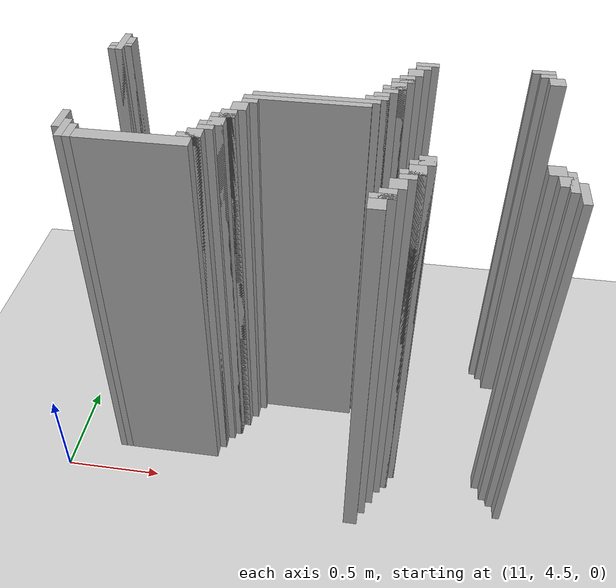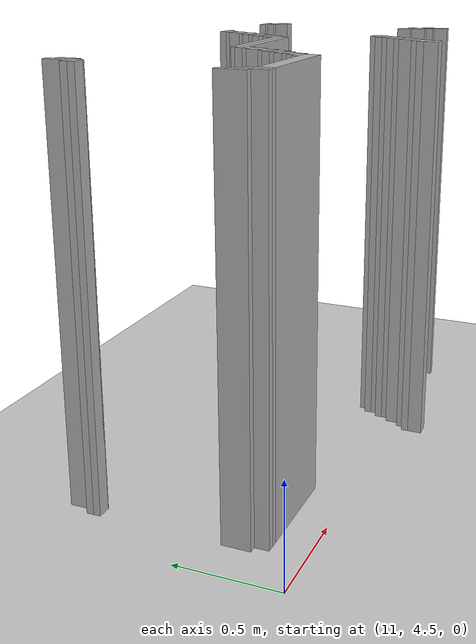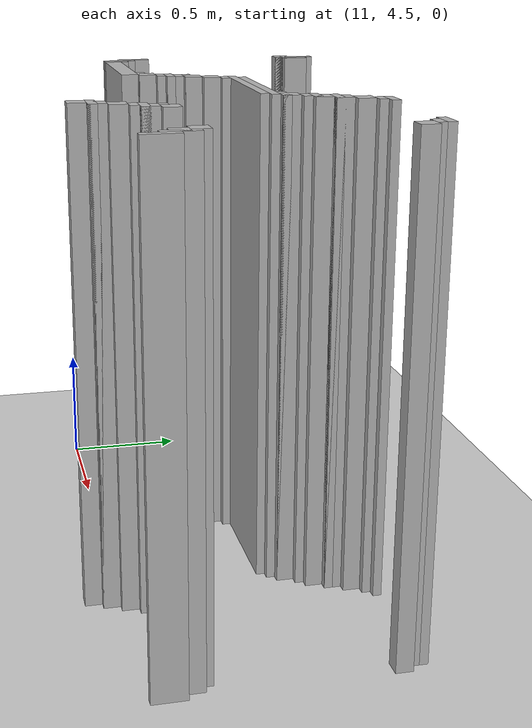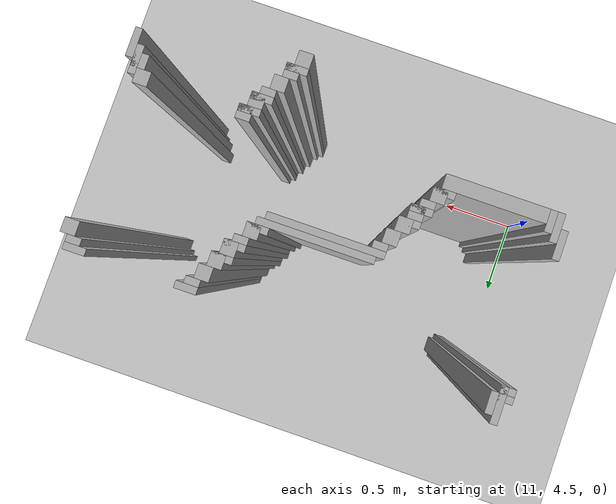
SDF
<sdf version="1.6">
 <world name="slam_world">
  <model name="ground_plane">
   <static>true</static>
   <link name="link">
    <collision name="collision">
     <geometry><plane><normal>0 0 1</normal><size>100 100</size></plane></geometry>
    </collision>
    <visual name="visual">
     <geometry><plane><normal>0 0 1</normal><size>100 100</size></plane></geometry>
     <material>
      <ambient>0.8 0.8 0.8 1</ambient>
      <diffuse>0.8 0.8 0.8 1</diffuse>
      <specular>0.8 0.8 0.8 1</specular>
     </material>
    </visual>
   </link>
  </model>
  <model name="wall_3935">
   <static>true</static>
   <pose>11.258700696055683 5.551044083526682 1.0 0 0 0</pose>
   <link name="link">
    <collision name="collision">
     <geometry><box><size>0.03480278422273782 0.17401392111368907 2.0</size></box></geometry>
    </collision>
    <visual name="visual">
     <geometry><box><size>0.03480278422273782 0.17401392111368907 2.0</size></box></geometry>
     <material><ambient>0.5 0.5 0.5 1</ambient><diffuse>0.7 0.7 0.7 1</diffuse></material>
    </visual>
   </link>
  </model>
  <model name="wall_3950">
   <static>true</static>
   <pose>11.293503480278423 5.551044083526682 1.0 0 0 0</pose>
   <link name="link">
    <collision name="collision">
     <geometry><box><size>0.03480278422273782 0.10440835266821345 2.0</size></box></geometry>
    </collision>
    <visual name="visual">
     <geometry><box><size>0.03480278422273782 0.10440835266821345 2.0</size></box></geometry>
     <material><ambient>0.5 0.5 0.5 1</ambient><diffuse>0.7 0.7 0.7 1</diffuse></material>
    </visual>
   </link>
  </model>
  <model name="wall_3980">
   <static>true</static>
   <pose>11.258700696055683 5.516241299303944 1.0 0 0 0</pose>
   <link name="link">
    <collision name="collision">
     <geometry><box><size>0.10440835266821345 0.03480278422273782 2.0</size></box></geometry>
    </collision>
    <visual name="visual">
     <geometry><box><size>0.10440835266821345 0.03480278422273782 2.0</size></box></geometry>
     <material><ambient>0.5 0.5 0.5 1</ambient><diffuse>0.7 0.7 0.7 1</diffuse></material>
    </visual>
   </link>
  </model>
  <model name="wall_3981">
   <static>true</static>
   <pose>12.720417633410673 5.516241299303944 1.0 0 0 0</pose>
   <link name="link">
    <collision name="collision">
     <geometry><box><size>0.10440835266821345 0.03480278422273782 2.0</size></box></geometry>
    </collision>
    <visual name="visual">
     <geometry><box><size>0.10440835266821345 0.03480278422273782 2.0</size></box></geometry>
     <material><ambient>0.5 0.5 0.5 1</ambient><diffuse>0.7 0.7 0.7 1</diffuse></material>
    </visual>
   </link>
  </model>
  <model name="wall_3982">
   <static>true</static>
   <pose>13.24245939675174 5.516241299303944 1.0 0 0 0</pose>
   <link name="link">
    <collision name="collision">
     <geometry><box><size>0.10440835266821345 0.03480278422273782 2.0</size></box></geometry>
    </collision>
    <visual name="visual">
     <geometry><box><size>0.10440835266821345 0.03480278422273782 2.0</size></box></geometry>
     <material><ambient>0.5 0.5 0.5 1</ambient><diffuse>0.7 0.7 0.7 1</diffuse></material>
    </visual>
   </link>
  </model>
  <model name="wall_3993">
   <static>true</static>
   <pose>11.241299303944315 5.481438515081206 1.0 0 0 0</pose>
   <link name="link">
    <collision name="collision">
     <geometry><box><size>0.06960556844547564 0.03480278422273782 2.0</size></box></geometry>
    </collision>
    <visual name="visual">
     <geometry><box><size>0.06960556844547564 0.03480278422273782 2.0</size></box></geometry>
     <material><ambient>0.5 0.5 0.5 1</ambient><diffuse>0.7 0.7 0.7 1</diffuse></material>
    </visual>
   </link>
  </model>
  <model name="wall_3994">
   <static>true</static>
   <pose>12.703016241299304 5.481438515081206 1.0 0 0 0</pose>
   <link name="link">
    <collision name="collision">
     <geometry><box><size>0.06960556844547564 0.03480278422273782 2.0</size></box></geometry>
    </collision>
    <visual name="visual">
     <geometry><box><size>0.06960556844547564 0.03480278422273782 2.0</size></box></geometry>
     <material><ambient>0.5 0.5 0.5 1</ambient><diffuse>0.7 0.7 0.7 1</diffuse></material>
    </visual>
   </link>
  </model>
  <model name="wall_3995">
   <static>true</static>
   <pose>13.259860788863108 5.481438515081206 1.0 0 0 0</pose>
   <link name="link">
    <collision name="collision">
     <geometry><box><size>0.06960556844547564 0.03480278422273782 2.0</size></box></geometry>
    </collision>
    <visual name="visual">
     <geometry><box><size>0.06960556844547564 0.03480278422273782 2.0</size></box></geometry>
     <material><ambient>0.5 0.5 0.5 1</ambient><diffuse>0.7 0.7 0.7 1</diffuse></material>
    </visual>
   </link>
  </model>
  <model name="wall_4007">
   <static>true</static>
   <pose>12.668213457076565 5.4292343387471 1.0 0 0 0</pose>
   <link name="link">
    <collision name="collision">
     <geometry><box><size>0.06960556844547564 0.06960556844547564 2.0</size></box></geometry>
    </collision>
    <visual name="visual">
     <geometry><box><size>0.06960556844547564 0.06960556844547564 2.0</size></box></geometry>
     <material><ambient>0.5 0.5 0.5 1</ambient><diffuse>0.7 0.7 0.7 1</diffuse></material>
    </visual>
   </link>
  </model>
  <model name="wall_4008">
   <static>true</static>
   <pose>13.294663573085847 5.4292343387471 1.0 0 0 0</pose>
   <link name="link">
    <collision name="collision">
     <geometry><box><size>0.06960556844547564 0.06960556844547564 2.0</size></box></geometry>
    </collision>
    <visual name="visual">
     <geometry><box><size>0.06960556844547564 0.06960556844547564 2.0</size></box></geometry>
     <material><ambient>0.5 0.5 0.5 1</ambient><diffuse>0.7 0.7 0.7 1</diffuse></material>
    </visual>
   </link>
  </model>
  <model name="wall_4020">
   <static>true</static>
   <pose>12.633410672853827 5.359628770301624 1.0 0 0 0</pose>
   <link name="link">
    <collision name="collision">
     <geometry><box><size>0.06960556844547564 0.06960556844547564 2.0</size></box></geometry>
    </collision>
    <visual name="visual">
     <geometry><box><size>0.06960556844547564 0.06960556844547564 2.0</size></box></geometry>
     <material><ambient>0.5 0.5 0.5 1</ambient><diffuse>0.7 0.7 0.7 1</diffuse></material>
    </visual>
   </link>
  </model>
  <model name="wall_4033">
   <static>true</static>
   <pose>12.616009280742459 5.342227378190255 1.0 0 0 0</pose>
   <link name="link">
    <collision name="collision">
     <geometry><box><size>0.10440835266821345 0.03480278422273782 2.0</size></box></geometry>
    </collision>
    <visual name="visual">
     <geometry><box><size>0.10440835266821345 0.03480278422273782 2.0</size></box></geometry>
     <material><ambient>0.5 0.5 0.5 1</ambient><diffuse>0.7 0.7 0.7 1</diffuse></material>
    </visual>
   </link>
  </model>
  <model name="wall_4041">
   <static>true</static>
   <pose>12.59860788863109 5.290023201856148 1.0 0 0 0</pose>
   <link name="link">
    <collision name="collision">
     <geometry><box><size>0.06960556844547564 0.06960556844547564 2.0</size></box></geometry>
    </collision>
    <visual name="visual">
     <geometry><box><size>0.06960556844547564 0.06960556844547564 2.0</size></box></geometry>
     <material><ambient>0.5 0.5 0.5 1</ambient><diffuse>0.7 0.7 0.7 1</diffuse></material>
    </visual>
   </link>
  </model>
  <model name="wall_4053">
   <static>true</static>
   <pose>12.581206496519721 5.27262180974478 1.0 0 0 0</pose>
   <link name="link">
    <collision name="collision">
     <geometry><box><size>0.10440835266821345 0.03480278422273782 2.0</size></box></geometry>
    </collision>
    <visual name="visual">
     <geometry><box><size>0.10440835266821345 0.03480278422273782 2.0</size></box></geometry>
     <material><ambient>0.5 0.5 0.5 1</ambient><diffuse>0.7 0.7 0.7 1</diffuse></material>
    </visual>
   </link>
  </model>
  <model name="wall_4061">
   <static>true</static>
   <pose>12.563805104408353 5.237819025522041 1.0 0 0 0</pose>
   <link name="link">
    <collision name="collision">
     <geometry><box><size>0.06960556844547564 0.03480278422273782 2.0</size></box></geometry>
    </collision>
    <visual name="visual">
     <geometry><box><size>0.06960556844547564 0.03480278422273782 2.0</size></box></geometry>
     <material><ambient>0.5 0.5 0.5 1</ambient><diffuse>0.7 0.7 0.7 1</diffuse></material>
    </visual>
   </link>
  </model>
  <model name="wall_4072">
   <static>true</static>
   <pose>12.529002320185615 5.185614849187935 1.0 0 0 0</pose>
   <link name="link">
    <collision name="collision">
     <geometry><box><size>0.06960556844547564 0.06960556844547564 2.0</size></box></geometry>
    </collision>
    <visual name="visual">
     <geometry><box><size>0.06960556844547564 0.06960556844547564 2.0</size></box></geometry>
     <material><ambient>0.5 0.5 0.5 1</ambient><diffuse>0.7 0.7 0.7 1</diffuse></material>
    </visual>
   </link>
  </model>
  <model name="wall_4085">
   <static>true</static>
   <pose>12.511600928074245 5.168213457076566 1.0 0 0 0</pose>
   <link name="link">
    <collision name="collision">
     <geometry><box><size>0.10440835266821345 0.03480278422273782 2.0</size></box></geometry>
    </collision>
    <visual name="visual">
     <geometry><box><size>0.10440835266821345 0.03480278422273782 2.0</size></box></geometry>
     <material><ambient>0.5 0.5 0.5 1</ambient><diffuse>0.7 0.7 0.7 1</diffuse></material>
    </visual>
   </link>
  </model>
  <model name="wall_4096">
   <static>true</static>
   <pose>12.250580046403712 5.133410672853828 1.0 0 0 0</pose>
   <link name="link">
    <collision name="collision">
     <geometry><box><size>0.5568445475638051 0.03480278422273782 2.0</size></box></geometry>
    </collision>
    <visual name="visual">
     <geometry><box><size>0.5568445475638051 0.03480278422273782 2.0</size></box></geometry>
     <material><ambient>0.5 0.5 0.5 1</ambient><diffuse>0.7 0.7 0.7 1</diffuse></material>
    </visual>
   </link>
  </model>
  <model name="wall_4108">
   <static>true</static>
   <pose>12.215777262180975 5.09860788863109 1.0 0 0 0</pose>
   <link name="link">
    <collision name="collision">
     <geometry><box><size>0.5568445475638051 0.03480278422273782 2.0</size></box></geometry>
    </collision>
    <visual name="visual">
     <geometry><box><size>0.5568445475638051 0.03480278422273782 2.0</size></box></geometry>
     <material><ambient>0.5 0.5 0.5 1</ambient><diffuse>0.7 0.7 0.7 1</diffuse></material>
    </visual>
   </link>
  </model>
  <model name="wall_4123">
   <static>true</static>
   <pose>11.97215777262181 5.0638051044083525 1.0 0 0 0</pose>
   <link name="link">
    <collision name="collision">
     <geometry><box><size>0.06960556844547564 0.03480278422273782 2.0</size></box></geometry>
    </collision>
    <visual name="visual">
     <geometry><box><size>0.06960556844547564 0.03480278422273782 2.0</size></box></geometry>
     <material><ambient>0.5 0.5 0.5 1</ambient><diffuse>0.7 0.7 0.7 1</diffuse></material>
    </visual>
   </link>
  </model>
  <model name="wall_4138">
   <static>true</static>
   <pose>11.937354988399072 5.0116009280742455 1.0 0 0 0</pose>
   <link name="link">
    <collision name="collision">
     <geometry><box><size>0.06960556844547564 0.06960556844547564 2.0</size></box></geometry>
    </collision>
    <visual name="visual">
     <geometry><box><size>0.06960556844547564 0.06960556844547564 2.0</size></box></geometry>
     <material><ambient>0.5 0.5 0.5 1</ambient><diffuse>0.7 0.7 0.7 1</diffuse></material>
    </visual>
   </link>
  </model>
  <model name="wall_4153">
   <static>true</static>
   <pose>11.902552204176333 4.94199535962877 1.0 0 0 0</pose>
   <link name="link">
    <collision name="collision">
     <geometry><box><size>0.06960556844547564 0.06960556844547564 2.0</size></box></geometry>
    </collision>
    <visual name="visual">
     <geometry><box><size>0.06960556844547564 0.06960556844547564 2.0</size></box></geometry>
     <material><ambient>0.5 0.5 0.5 1</ambient><diffuse>0.7 0.7 0.7 1</diffuse></material>
    </visual>
   </link>
  </model>
  <model name="wall_4168">
   <static>true</static>
   <pose>11.885150812064964 4.924593967517401 1.0 0 0 0</pose>
   <link name="link">
    <collision name="collision">
     <geometry><box><size>0.10440835266821345 0.03480278422273782 2.0</size></box></geometry>
    </collision>
    <visual name="visual">
     <geometry><box><size>0.10440835266821345 0.03480278422273782 2.0</size></box></geometry>
     <material><ambient>0.5 0.5 0.5 1</ambient><diffuse>0.7 0.7 0.7 1</diffuse></material>
    </visual>
   </link>
  </model>
  <model name="wall_4179">
   <static>true</static>
   <pose>11.867749419953595 4.872389791183294 1.0 0 0 0</pose>
   <link name="link">
    <collision name="collision">
     <geometry><box><size>0.06960556844547564 0.06960556844547564 2.0</size></box></geometry>
    </collision>
    <visual name="visual">
     <geometry><box><size>0.06960556844547564 0.06960556844547564 2.0</size></box></geometry>
     <material><ambient>0.5 0.5 0.5 1</ambient><diffuse>0.7 0.7 0.7 1</diffuse></material>
    </visual>
   </link>
  </model>
  <model name="wall_4192">
   <static>true</static>
   <pose>11.223897911832946 4.802784222737819 1.0 0 0 0</pose>
   <link name="link">
    <collision name="collision">
     <geometry><box><size>0.03480278422273782 0.13921113689095127 2.0</size></box></geometry>
    </collision>
    <visual name="visual">
     <geometry><box><size>0.03480278422273782 0.13921113689095127 2.0</size></box></geometry>
     <material><ambient>0.5 0.5 0.5 1</ambient><diffuse>0.7 0.7 0.7 1</diffuse></material>
    </visual>
   </link>
  </model>
  <model name="wall_4193">
   <static>true</static>
   <pose>11.850348027842227 4.854988399071925 1.0 0 0 0</pose>
   <link name="link">
    <collision name="collision">
     <geometry><box><size>0.10440835266821345 0.03480278422273782 2.0</size></box></geometry>
    </collision>
    <visual name="visual">
     <geometry><box><size>0.10440835266821345 0.03480278422273782 2.0</size></box></geometry>
     <material><ambient>0.5 0.5 0.5 1</ambient><diffuse>0.7 0.7 0.7 1</diffuse></material>
    </visual>
   </link>
  </model>
  <model name="wall_4201">
   <static>true</static>
   <pose>11.832946635730858 4.820185614849188 1.0 0 0 0</pose>
   <link name="link">
    <collision name="collision">
     <geometry><box><size>0.06960556844547564 0.03480278422273782 2.0</size></box></geometry>
    </collision>
    <visual name="visual">
     <geometry><box><size>0.06960556844547564 0.03480278422273782 2.0</size></box></geometry>
     <material><ambient>0.5 0.5 0.5 1</ambient><diffuse>0.7 0.7 0.7 1</diffuse></material>
    </visual>
   </link>
  </model>
  <model name="wall_4214">
   <static>true</static>
   <pose>11.258700696055683 4.7331786542923435 1.0 0 0 0</pose>
   <link name="link">
    <collision name="collision">
     <geometry><box><size>0.03480278422273782 0.13921113689095127 2.0</size></box></geometry>
    </collision>
    <visual name="visual">
     <geometry><box><size>0.03480278422273782 0.13921113689095127 2.0</size></box></geometry>
     <material><ambient>0.5 0.5 0.5 1</ambient><diffuse>0.7 0.7 0.7 1</diffuse></material>
    </visual>
   </link>
  </model>
  <model name="wall_4215">
   <static>true</static>
   <pose>11.79814385150812 4.767981438515081 1.0 0 0 0</pose>
   <link name="link">
    <collision name="collision">
     <geometry><box><size>0.06960556844547564 0.06960556844547564 2.0</size></box></geometry>
    </collision>
    <visual name="visual">
     <geometry><box><size>0.06960556844547564 0.06960556844547564 2.0</size></box></geometry>
     <material><ambient>0.5 0.5 0.5 1</ambient><diffuse>0.7 0.7 0.7 1</diffuse></material>
    </visual>
   </link>
  </model>
  <model name="wall_4228">
   <static>true</static>
   <pose>11.293503480278423 4.715777262180974 1.0 0 0 0</pose>
   <link name="link">
    <collision name="collision">
     <geometry><box><size>0.03480278422273782 0.10440835266821345 2.0</size></box></geometry>
    </collision>
    <visual name="visual">
     <geometry><box><size>0.03480278422273782 0.10440835266821345 2.0</size></box></geometry>
     <material><ambient>0.5 0.5 0.5 1</ambient><diffuse>0.7 0.7 0.7 1</diffuse></material>
    </visual>
   </link>
  </model>
  <model name="wall_4229">
   <static>true</static>
   <pose>11.780742459396752 4.750580046403712 1.0 0 0 0</pose>
   <link name="link">
    <collision name="collision">
     <geometry><box><size>0.10440835266821345 0.03480278422273782 2.0</size></box></geometry>
    </collision>
    <visual name="visual">
     <geometry><box><size>0.10440835266821345 0.03480278422273782 2.0</size></box></geometry>
     <material><ambient>0.5 0.5 0.5 1</ambient><diffuse>0.7 0.7 0.7 1</diffuse></material>
    </visual>
   </link>
  </model>
  <model name="wall_4240">
   <static>true</static>
   <pose>11.554524361948955 4.698375870069605 1.0 0 0 0</pose>
   <link name="link">
    <collision name="collision">
     <geometry><box><size>0.4872389791183295 0.06960556844547564 2.0</size></box></geometry>
    </collision>
    <visual name="visual">
     <geometry><box><size>0.4872389791183295 0.06960556844547564 2.0</size></box></geometry>
     <material><ambient>0.5 0.5 0.5 1</ambient><diffuse>0.7 0.7 0.7 1</diffuse></material>
    </visual>
   </link>
  </model>
  <model name="wall_4241">
   <static>true</static>
   <pose>12.737819025522041 4.698375870069605 1.0 0 0 0</pose>
   <link name="link">
    <collision name="collision">
     <geometry><box><size>0.06960556844547564 0.06960556844547564 2.0</size></box></geometry>
    </collision>
    <visual name="visual">
     <geometry><box><size>0.06960556844547564 0.06960556844547564 2.0</size></box></geometry>
     <material><ambient>0.5 0.5 0.5 1</ambient><diffuse>0.7 0.7 0.7 1</diffuse></material>
    </visual>
   </link>
  </model>
  <model name="wall_4242">
   <static>true</static>
   <pose>13.22505800464037 4.698375870069605 1.0 0 0 0</pose>
   <link name="link">
    <collision name="collision">
     <geometry><box><size>0.06960556844547564 0.06960556844547564 2.0</size></box></geometry>
    </collision>
    <visual name="visual">
     <geometry><box><size>0.06960556844547564 0.06960556844547564 2.0</size></box></geometry>
     <material><ambient>0.5 0.5 0.5 1</ambient><diffuse>0.7 0.7 0.7 1</diffuse></material>
    </visual>
   </link>
  </model>
  <model name="wall_4251">
   <static>true</static>
   <pose>12.720417633410673 4.6809744779582365 1.0 0 0 0</pose>
   <link name="link">
    <collision name="collision">
     <geometry><box><size>0.10440835266821345 0.03480278422273782 2.0</size></box></geometry>
    </collision>
    <visual name="visual">
     <geometry><box><size>0.10440835266821345 0.03480278422273782 2.0</size></box></geometry>
     <material><ambient>0.5 0.5 0.5 1</ambient><diffuse>0.7 0.7 0.7 1</diffuse></material>
    </visual>
   </link>
  </model>
  <model name="wall_4252">
   <static>true</static>
   <pose>13.277262180974477 4.6287703016241295 1.0 0 0 0</pose>
   <link name="link">
    <collision name="collision">
     <geometry><box><size>0.03480278422273782 0.13921113689095127 2.0</size></box></geometry>
    </collision>
    <visual name="visual">
     <geometry><box><size>0.03480278422273782 0.13921113689095127 2.0</size></box></geometry>
     <material><ambient>0.5 0.5 0.5 1</ambient><diffuse>0.7 0.7 0.7 1</diffuse></material>
    </visual>
   </link>
  </model>
  <model name="wall_4262">
   <static>true</static>
   <pose>12.703016241299304 4.6287703016241295 1.0 0 0 0</pose>
   <link name="link">
    <collision name="collision">
     <geometry><box><size>0.06960556844547564 0.06960556844547564 2.0</size></box></geometry>
    </collision>
    <visual name="visual">
     <geometry><box><size>0.06960556844547564 0.06960556844547564 2.0</size></box></geometry>
     <material><ambient>0.5 0.5 0.5 1</ambient><diffuse>0.7 0.7 0.7 1</diffuse></material>
    </visual>
   </link>
  </model>
  <model name="wall_4263">
   <static>true</static>
   <pose>13.259860788863108 4.6287703016241295 1.0 0 0 0</pose>
   <link name="link">
    <collision name="collision">
     <geometry><box><size>0.06960556844547564 0.06960556844547564 2.0</size></box></geometry>
    </collision>
    <visual name="visual">
     <geometry><box><size>0.06960556844547564 0.06960556844547564 2.0</size></box></geometry>
     <material><ambient>0.5 0.5 0.5 1</ambient><diffuse>0.7 0.7 0.7 1</diffuse></material>
    </visual>
   </link>
  </model>
  <model name="wall_4273">
   <static>true</static>
   <pose>12.685614849187935 4.611368909512761 1.0 0 0 0</pose>
   <link name="link">
    <collision name="collision">
     <geometry><box><size>0.10440835266821345 0.03480278422273782 2.0</size></box></geometry>
    </collision>
    <visual name="visual">
     <geometry><box><size>0.10440835266821345 0.03480278422273782 2.0</size></box></geometry>
     <material><ambient>0.5 0.5 0.5 1</ambient><diffuse>0.7 0.7 0.7 1</diffuse></material>
    </visual>
   </link>
  </model>
  <model name="wall_4274">
   <static>true</static>
   <pose>13.312064965197216 4.559164733178654 1.0 0 0 0</pose>
   <link name="link">
    <collision name="collision">
     <geometry><box><size>0.03480278422273782 0.13921113689095127 2.0</size></box></geometry>
    </collision>
    <visual name="visual">
     <geometry><box><size>0.03480278422273782 0.13921113689095127 2.0</size></box></geometry>
     <material><ambient>0.5 0.5 0.5 1</ambient><diffuse>0.7 0.7 0.7 1</diffuse></material>
    </visual>
   </link>
  </model>
  <model name="wall_4280">
   <static>true</static>
   <pose>12.668213457076565 4.576566125290023 1.0 0 0 0</pose>
   <link name="link">
    <collision name="collision">
     <geometry><box><size>0.06960556844547564 0.03480278422273782 2.0</size></box></geometry>
    </collision>
    <visual name="visual">
     <geometry><box><size>0.06960556844547564 0.03480278422273782 2.0</size></box></geometry>
     <material><ambient>0.5 0.5 0.5 1</ambient><diffuse>0.7 0.7 0.7 1</diffuse></material>
    </visual>
   </link>
  </model>
  <model name="wall_4289">
   <static>true</static>
   <pose>12.633410672853827 4.524361948955916 1.0 0 0 0</pose>
   <link name="link">
    <collision name="collision">
     <geometry><box><size>0.06960556844547564 0.06960556844547564 2.0</size></box></geometry>
    </collision>
    <visual name="visual">
     <geometry><box><size>0.06960556844547564 0.06960556844547564 2.0</size></box></geometry>
     <material><ambient>0.5 0.5 0.5 1</ambient><diffuse>0.7 0.7 0.7 1</diffuse></material>
    </visual>
   </link>
  </model>
  <model name="wall_4300">
   <static>true</static>
   <pose>12.59860788863109 4.454756380510441 1.0 0 0 0</pose>
   <link name="link">
    <collision name="collision">
     <geometry><box><size>0.06960556844547564 0.06960556844547564 2.0</size></box></geometry>
    </collision>
    <visual name="visual">
     <geometry><box><size>0.06960556844547564 0.06960556844547564 2.0</size></box></geometry>
     <material><ambient>0.5 0.5 0.5 1</ambient><diffuse>0.7 0.7 0.7 1</diffuse></material>
    </visual>
   </link>
  </model>
  <model name="wall_4311">
   <static>true</static>
   <pose>12.581206496519721 4.437354988399072 1.0 0 0 0</pose>
   <link name="link">
    <collision name="collision">
     <geometry><box><size>0.10440835266821345 0.03480278422273782 2.0</size></box></geometry>
    </collision>
    <visual name="visual">
     <geometry><box><size>0.10440835266821345 0.03480278422273782 2.0</size></box></geometry>
     <material><ambient>0.5 0.5 0.5 1</ambient><diffuse>0.7 0.7 0.7 1</diffuse></material>
    </visual>
   </link>
  </model>
  <model name="wall_4317">
   <static>true</static>
   <pose>12.563805104408353 4.385150812064965 1.0 0 0 0</pose>
   <link name="link">
    <collision name="collision">
     <geometry><box><size>0.06960556844547564 0.06960556844547564 2.0</size></box></geometry>
    </collision>
    <visual name="visual">
     <geometry><box><size>0.06960556844547564 0.06960556844547564 2.0</size></box></geometry>
     <material><ambient>0.5 0.5 0.5 1</ambient><diffuse>0.7 0.7 0.7 1</diffuse></material>
    </visual>
   </link>
  </model>
 </world>
</sdf>
